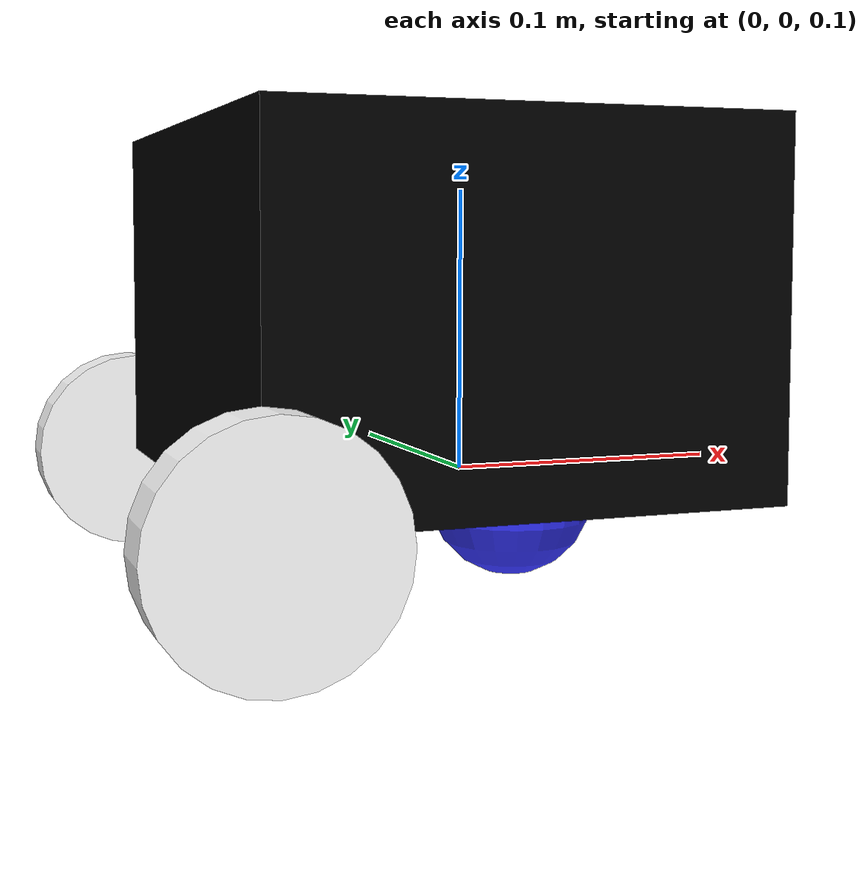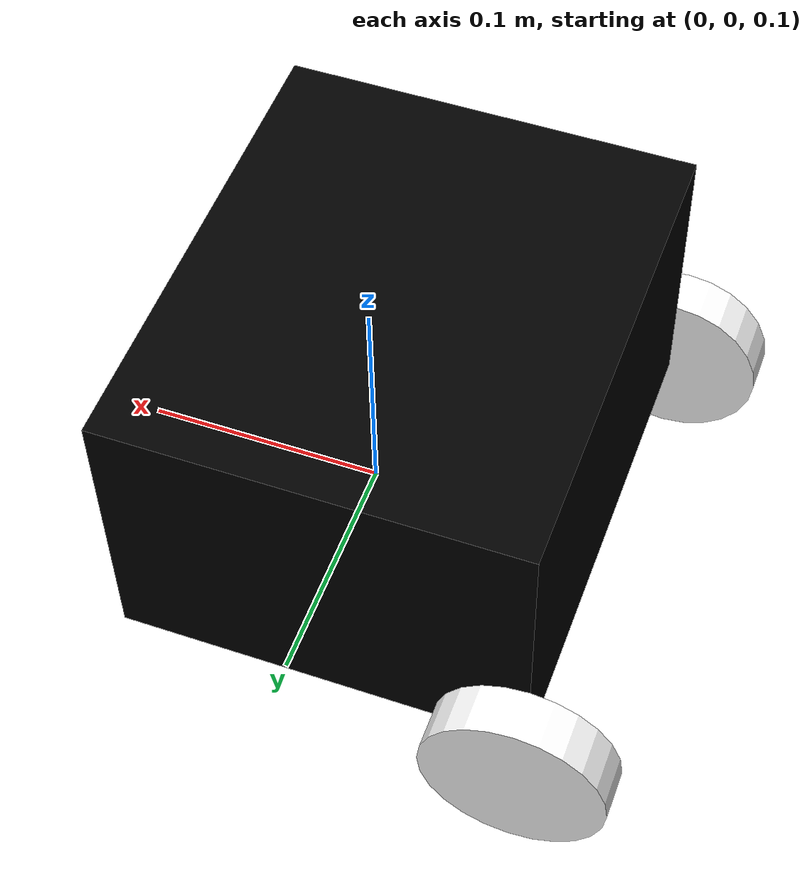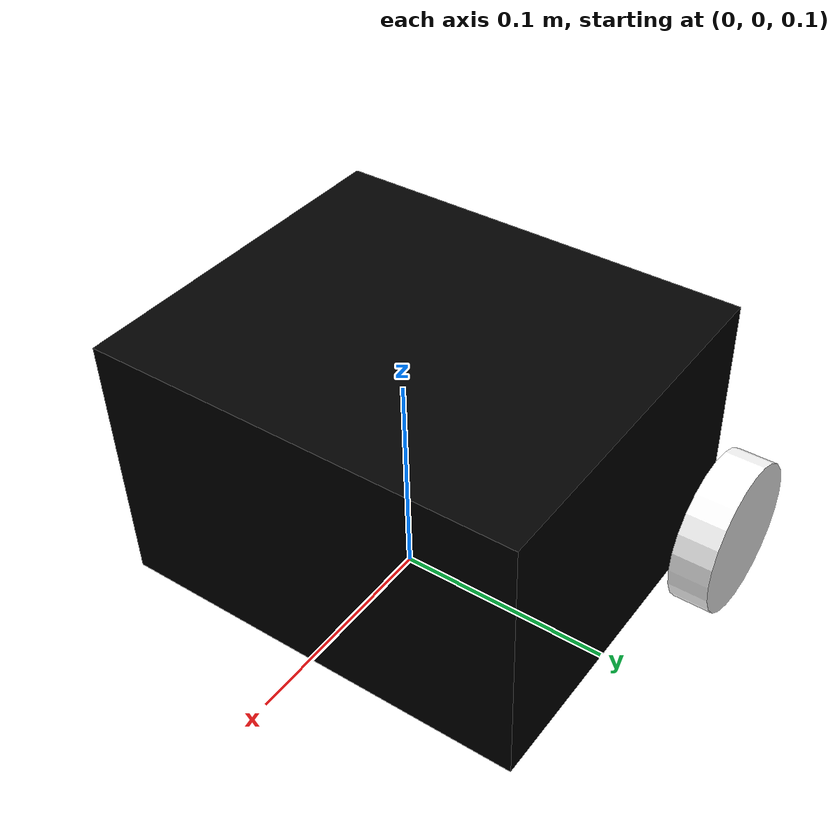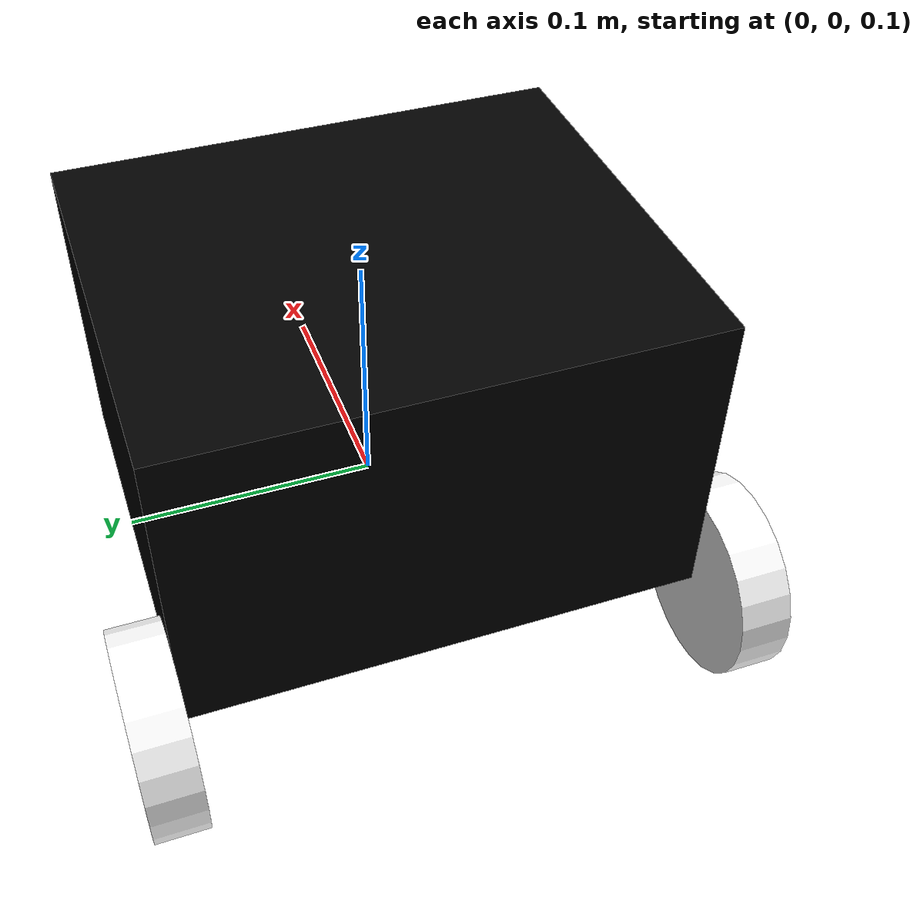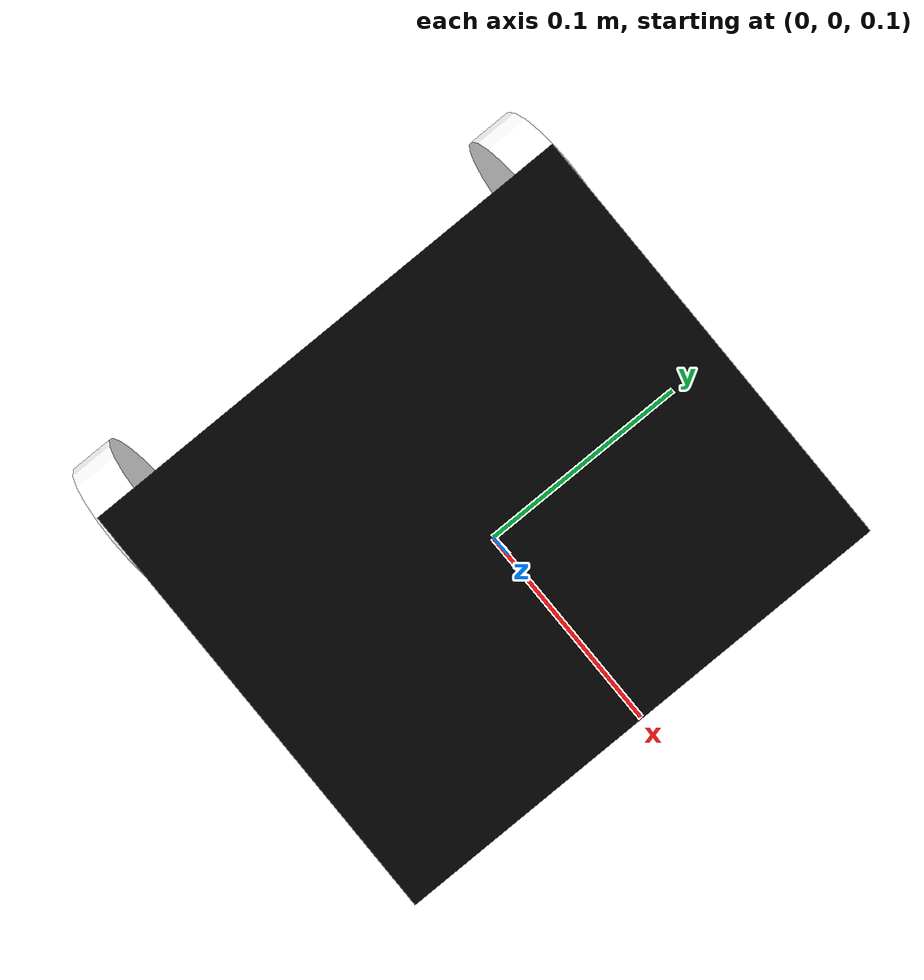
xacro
<?xml version="1.0"?>
<robot xmlns:xacro="http://www.ros.org/wiki/xacro" >

    <xacro:include filename="inertial_macros.xacro"/>

    <material name="white">
        <color rgba="1 1 1 1" />
    </material>

    <material name="orange">
        <color rgba="1 0.3 0.1 1"/>
    </material>

    <material name="blue">
        <color rgba="0.2 0.2 1 1"/>
    </material>

    <material name="black">
        <color rgba="0 0 0 1"/>
    </material>

    <!-- BASE LINK -->

    <link name="base_link">

    </link>

    <!-- CHASSIS LINK -->

    <joint name="chassis_joint" type="fixed">
        <parent link="base_link"/>
        <child link="chassis"/>
        <origin xyz="-0.1 0 0.06"/>
    </joint>

    <link name="chassis">
        <visual>
            <origin xyz="0.085 0 .10"/>
            <geometry>
                <box size="0.17 0.20 0.123"/>
            </geometry>
            <material name="black"/>
        </visual>
      <collision>
        <origin xyz="0.085 0 0.10"/>
        <geometry>
            <box size="0.17 0.20 0.123"/>
        </geometry>
    </collision>
    <xacro:inertial_box mass="1.5" x="0.17" y="0.20" z="0.123">
        <origin xyz="0.085 0 0.10" rpy="0 0 0"/>
    </xacro:inertial_box>

    </link>

    <!-- LEFT WHEEL LINK -->

    <!-- CASTER WHEEL LINK -->

    <joint name="caster_wheel_joint" type="fixed">
        <parent link="chassis"/>
        <child link="caster_wheel"/>
        <origin xyz="0.12 0 0.03" rpy="0 0 0"/>
    </joint>

    <link name="caster_wheel">
        <visual>
            <geometry>
                <sphere radius="0.03"/>
            </geometry>
            <material name="blue"/>
        </visual>
        <collision>
            <geometry>
                <sphere radius="0.03"/>
            </geometry>
        </collision>
        <xacro:inertial_sphere mass="0.1" radius="0.03">
            <origin xyz="0 0 0" rpy="0 0 0"/>
        </xacro:inertial_sphere>
    </link>

        <!-- LEFT WHEEL LINK -->

    <joint name="left_wheel_joint" type="continuous">
        <!-- El chasis es el padre -->
        <parent link="chassis"/>
        <child link="left_wheel"/>
        <!-- Colocamos la rueda al lado izquierdo (Y positivo o negativo según tu orientación)
             y justo tocando el suelo. -->
        <origin xyz="0 0.11 0.0381" rpy="0 0 0"/>
        <!-- Eje de rotación: Y si la rueda gira hacia adelante cuando rota sobre ese eje -->
        <axis xyz="0 1 0"/>
    </joint>

    <link name="left_wheel">
        <visual>
            <!-- Rotamos el cilindro 90° para que esté "acostado" -->
            <origin xyz="0 0 0" rpy="1.5708 0 0"/>
            <geometry>
                <!-- Rueda de 3 pulgadas de diámetro (0.0381 m de radio) -->
                <cylinder radius="0.0381" length="0.02"/>
            </geometry>
            <material name="white"/>
        </visual>

        <collision>
            <origin xyz="0 0 0" rpy="1.5708 0 0"/>
            <geometry>
                <cylinder radius="0.0381" length="0.02"/>
            </geometry>
        </collision>

        <!-- Masa y propiedades de inercia básicas -->
        <xacro:inertial_cylinder mass="0.2" radius="0.0381" length="0.02">
            <origin xyz="0 0 0" rpy="1.5708 0 0"/>
        </xacro:inertial_cylinder>
    </link>

    <!-- RIGHT WHEEL LINK -->
    <joint name="right_wheel_joint" type="continuous">
        <parent link="chassis"/>
        <child link="right_wheel"/>
        <!-- La rueda derecha va al lado opuesto, así que Y es negativo -->
        <origin xyz="0 -0.11 0.0381" rpy="0 0 0"/>
        <axis xyz="0 1 0"/>
    </joint>

    <link name="right_wheel">
        <visual>
            <origin xyz="0 0 0" rpy="1.5708 0 0"/>
            <geometry>
                <cylinder radius="0.0381" length="0.02"/>
            </geometry>
            <material name="white"/>
        </visual>

        <collision>
            <origin xyz="0 0 0" rpy="1.5708 0 0"/>
            <geometry>
                <cylinder radius="0.0381" length="0.02"/>
            </geometry>
        </collision>

        <xacro:inertial_cylinder mass="0.2" radius="0.0381" length="0.02">
            <origin xyz="0 0 0" rpy="1.5708 0 0"/>
        </xacro:inertial_cylinder>
    </link>

</robot>
